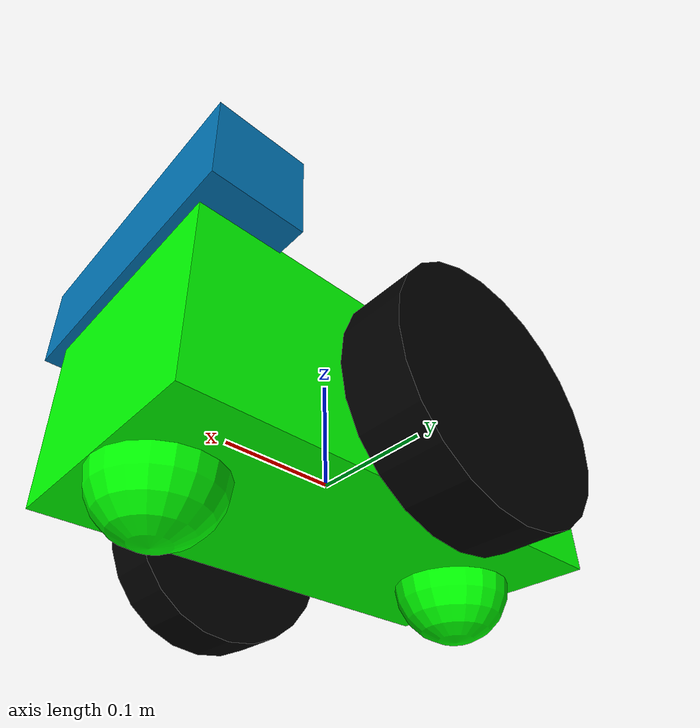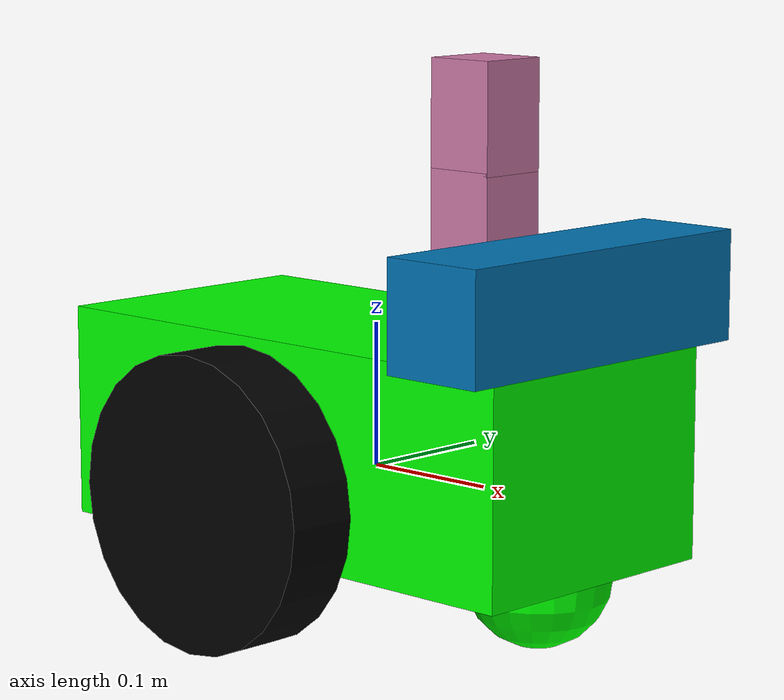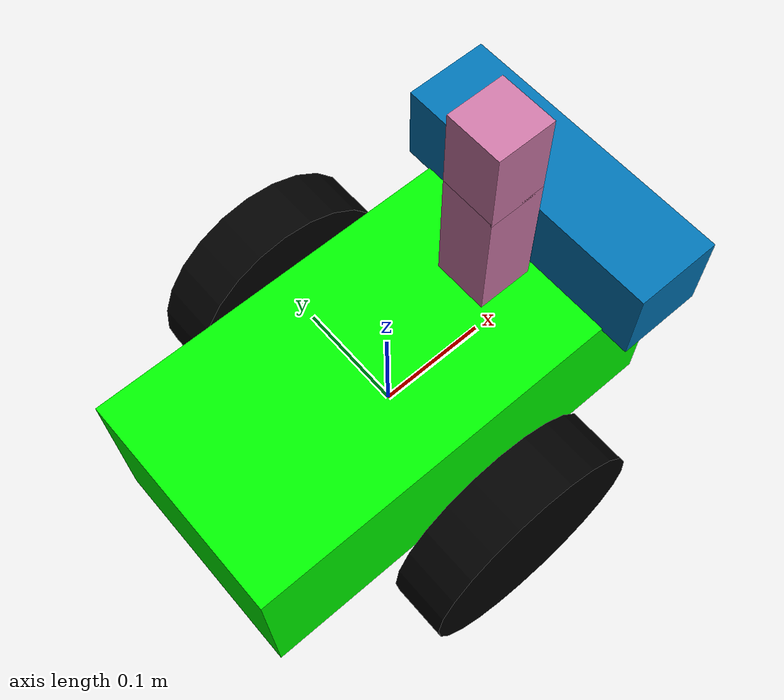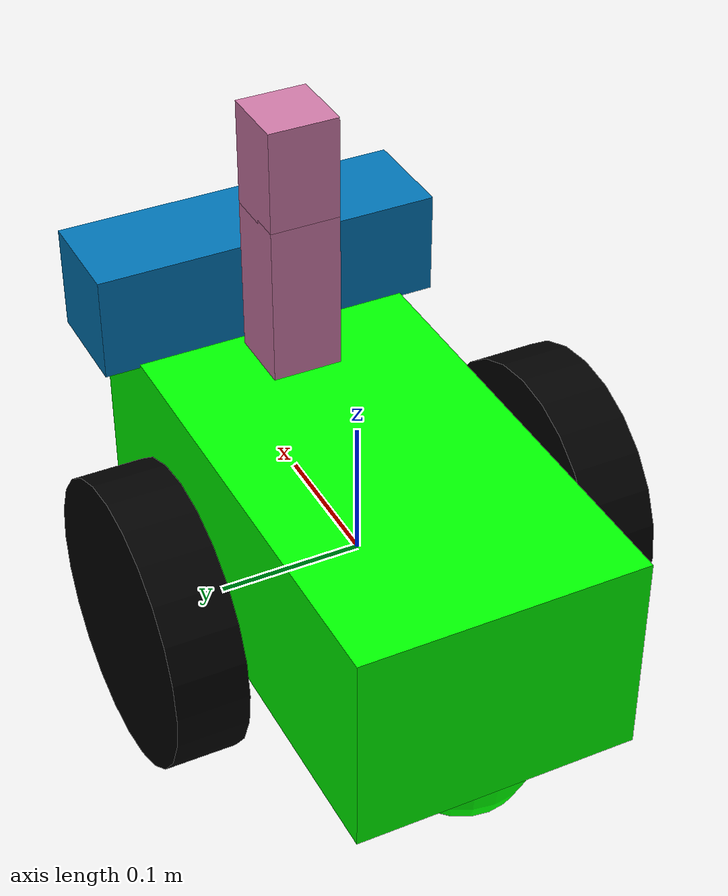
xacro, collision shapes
<?xml version='1.0'?>

<!-- Robot -->

<robot name="robot" xmlns:xacro="http://www.ros.org/wiki/xacro">

  <!-- import URDF files -->
  <xacro:include filename="$(find rtab_map)/urdf/common_properties.xacro"/>
  <xacro:include filename="$(find rtab_map)/urdf/robot.gazebo" />

  <!-- robot_footprint -->
  <link name="robot_footprint"></link>

  <joint name="robot_footprint_joint" type="fixed">
    <origin xyz="0 0 0" rpy="0 0 0" />
    <parent link="robot_footprint"/>
    <child link="chassis" />
  </joint>

  <!-- chassis -->
  <link name='chassis'>
    <pose>0 0 0.1 0 0 0</pose>

    <visual name='chassis_visual'>
      <origin xyz="0 0 0.025" rpy=" 0 0 0"/>
      <geometry>
        <box size=".4 .2 .15"/>
      </geometry>
      <material name="green"/>
    </visual>

    <inertial>
      <mass value="15.0"/>
      <origin xyz="0.0 0 0" rpy=" 0 0 0"/>
      <inertia
          ixx="0.1" ixy="0" ixz="0"
          iyy="0.1" iyz="0"
          izz="0.1"
      />
    </inertial>

    <collision name='collision'>
      <origin xyz="0 0 0.025" rpy=" 0 0 0"/>
      <geometry>
        <box size=".4 .2 .15"/>
      </geometry>
    </collision>

    <!-- back_caster_collision -->

    <visual name='back_caster_visual'>
      <origin xyz="-0.15 0 -0.05" rpy=" 0 0 0"/>
      <geometry>
        <sphere radius="0.0499"/>
      </geometry>
    </visual>

    <collision name='back_caster_collision'>
      <origin xyz="-0.15 0 -0.05" rpy=" 0 0 0"/>
      <geometry>
        <sphere radius="0.0499"/>
      </geometry>
      <surface>
        <friction>
          <ode>
            <mu>0</mu>
            <mu2>0</mu2>
            <slip1>1.0</slip1>
            <slip2>1.0</slip2>
          </ode>
        </friction>
      </surface>
    </collision>

    <!-- front_caster_collision -->

    <visual name='front_caster_visual'>
      <origin xyz="0.15 0 -0.05" rpy=" 0 0 0"/>
      <geometry>
        <sphere radius="0.0499"/>
      </geometry>
    </visual>

    <collision name='front_caster_collision'>
      <origin xyz="0.15 0 -0.05" rpy=" 0 0 0"/>
      <geometry>
        <sphere radius="0.0499"/>
      </geometry>
      <surface>
        <friction>
          <ode>
            <mu>0</mu>
            <mu2>0</mu2>
            <slip1>1.0</slip1>
            <slip2>1.0</slip2>
          </ode>
        </friction>
      </surface>
    </collision>

  </link>

  <!-- left_wheel -->

  <link name="left_wheel">

    <visual name='left_wheel_visual'>
      <origin xyz="0 0 0" rpy=" 0 1.5707 1.5707"/>
      <geometry>
        <cylinder radius="0.1" length="0.05"/>
      </geometry>
      <material name="black"/>
    </visual>

   <collision name='left_wheel_collision'>
      <origin xyz="0 0 0" rpy=" 0 1.5707 1.5707"/>
      <geometry>
        <cylinder radius="0.1" length="0.05"/>
      </geometry>
   </collision>

    <inertial>
      <mass value="5.0"/>
      <origin xyz="0.0 0 0" rpy=" 0 1.5707 1.5707"/>
      <inertia
          ixx="0.1" ixy="0" ixz="0"
          iyy="0.1" iyz="0"
          izz="0.1"
      />
    </inertial>

  </link>

  <joint type="continuous" name="left_wheel_hinge">
      <origin xyz="0 0.15 0" rpy="0 0 0"/>
      <child link="left_wheel"/>
      <parent link="chassis"/>
      <axis xyz="0 1 0" rpy="0 0 0"/>
      <limit effort="10000" velocity="1000"/>
      <joint_properties damping="1.0" friction="1.0"/>
  </joint>

  <!-- right_wheel -->

  <link name="right_wheel">

    <visual name='right_wheel_visual'>
      <origin xyz="0 0 0" rpy=" 0 1.5707 1.5707"/>
      <geometry>
        <cylinder radius="0.1" length="0.05"/>
      </geometry>
      <material name="black"/>
    </visual>

    <collision name='right_wheel_collision'>
      <origin xyz="0 0 0" rpy=" 0 1.5707 1.5707"/>
      <geometry>
        <cylinder radius="0.1" length="0.05"/>
      </geometry>
    </collision>

    <inertial>
      <mass value="5.0"/>
      <origin xyz="0.0 0 0" rpy=" 0 1.5707 1.5707"/>
      <inertia
          ixx="0.1" ixy="0" ixz="0"
          iyy="0.1" iyz="0"
          izz="0.1"
      />
    </inertial>

  </link>

  <joint type="continuous" name="right_wheel_hinge">
      <origin xyz="0 -0.15 0" rpy="0 0 0"/>
      <child link="right_wheel"/>
      <parent link="chassis"/>
      <axis xyz="0 1 0" rpy="0 0 0"/>
      <limit effort="10000" velocity="1000"/>
      <joint_properties damping="1.0" friction="1.0"/>
  </joint>

  <!-- RGBD camera -->

  <!-- RGB camera link -->
  <link name="RGBD_camera">

    <visual name='RGBD_camera_visual'>
      <origin xyz="0 0 0" rpy=" 0 0 0"/>
      <geometry>
        <mesh filename="package://rtab_map/meshes/kinect.dae"/>
      </geometry>
    </visual>

    <collision>
      <origin xyz="-0.03 0 -0.015" rpy="0 0 0"/>
  	  <geometry>
  	    <box size="0.075 0.25 0.075"/>
  	  </geometry>
  	</collision>

    <inertial>
      <mass value="0.564" />
      <origin xyz="0 0 0" />
      <inertia ixx="0.003881243" ixy="0.0" ixz="0.0"
               iyy="0.000498940" iyz="0.0"
               izz="0.003879257" />
    </inertial>
  </link>

  <!-- Depth camera link - used to rotate point cloud -->
  <link name="Depth_camera"></link>

  <!-- RGB camera joint -->
  <joint type="fixed" name="RGB_camera_joint">
      <origin xyz="0.2 0 0.15" rpy="0 0 0"/>
      <child link="RGBD_camera"/>
      <parent link="chassis"/>
      <axis xyz="1 0 0" rpy="0 0 0"/>
  </joint>

  <!-- Depth camera joint -->
  <joint type="fixed" name="Depth_camera_joint">
      <origin xyz="0.2 0 0.15" rpy="${-PI/2} 0 ${-PI/2}"/>
      <child link="Depth_camera"/>
      <parent link="RGBD_camera"/>
      <axis xyz="1 0 0" rpy="0 0 0"/>
  </joint>

  <!-- hokuyo laser range finder -->
  <link name="hokuyo">
    <visual name='hokuyo_visual'>
      <origin xyz="0 0 0" rpy=" 0 0 0"/>
      <geometry>
        <mesh filename="package://rtab_map/meshes/hokuyo.dae"/>
      </geometry>
    </visual>

    <collision name='hokuyo_collision'>
      <origin xyz="0 0 0" rpy=" 0 0 0"/>
      <geometry>
        <box size="0.05 0.05 0.075"/>
      </geometry>
    </collision>

    <visual name='hokuyo_base_visual'>
      <origin xyz="0 0 -0.0925" rpy=" 0 0 0"/>
      <geometry>
        <box size="0.05 0.05 0.115"/>
      </geometry>
    </visual>

    <collision name='hokuyo_base_collision'>
      <origin xyz="0 0 -0.0925" rpy=" 0 0 0"/>
      <geometry>
        <box size="0.05 0.05 0.115"/>
      </geometry>
    </collision>

    <inertial>
      <mass value="0.1"/>
      <origin xyz="0 0 0" rpy=" 0 0 0"/>
      <inertia
          ixx="1e-6" ixy="0" ixz="0"
          iyy="1e-6" iyz="0"
          izz="1e-6"
      />
    </inertial>
  </link>

  <joint type="fixed" name="hokuyo_joint">
      <origin xyz="0.1 0 0.25" rpy="0 0 0"/>
      <child link="hokuyo"/>
      <parent link="chassis"/>
      <axis xyz="1 0 0" rpy="0 0 0"/>
  </joint>

</robot>

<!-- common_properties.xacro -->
<robot name="robot" xmlns:xacro="http://www.ros.org/wiki/xacro">

  <xacro:property name="PI" value="3.14159265358979323846" />

  <material name="black">
      <color rgba="0.0 0.0 0.0 1.0"/>
  </material>

  <material name="blue">
    <color rgba="0.0 0.0 1.0 1.0"/>
  </material>

  <material name="green">
    <color rgba="0.0 1.0 0.0 1.0"/>
  </material>

  <material name="red">
    <color rgba="1.0 0.0 0.0 1.0"/>
  </material>

</robot>
